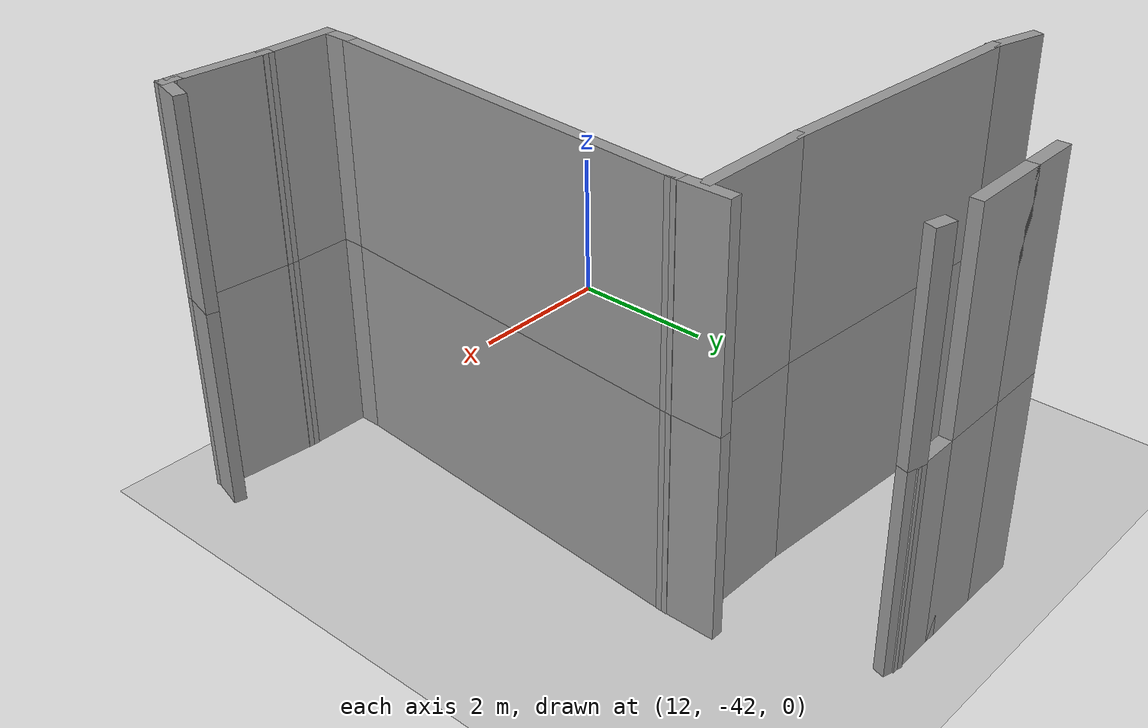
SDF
<sdf version="1.7">
 <world name="default">
  <model name="ground_plane">
   <static>1</static>
   <link name="link">
    <collision name="collision">
     <geometry><plane><normal>0 0 1</normal><size>100 100</size></plane></geometry>
     <surface>
      <contact><collide_bitmask>65535</collide_bitmask></contact>
      <friction><ode><mu>100</mu><mu2>50</mu2></ode></friction>
     </surface>
    </collision>
    <visual name="visual">
     <cast_shadows>0</cast_shadows>
     <geometry><plane><normal>0 0 1</normal><size>100 100</size></plane></geometry>
     <material>
      <script><uri>file://media/materials/scripts/gazebo.material</uri><name>Gazebo/Grey</name></script>
     </material>
    </visual>
   </link>
  </model>
  <model name="EnvDC01">
   <link name="Wall_199">
    <pose>7.47234 -28.3016 0 0 -0 0</pose>
    <visual name="Wall_199_Visual">
     <pose>0 0 1.25 0 -0 0</pose>
     <geometry><box><size>0.75 0.15 2.5</size></box></geometry>
     <material>
      <script><uri>file://media/materials/scripts/gazebo.material</uri><name>Gazebo/Grey</name></script>
      <ambient>1 1 1 1</ambient>
      <shader type="pixel"/>
     </material>
     <meta><layer>0</layer></meta>
    </visual>
    <collision name="Wall_199_Collision">
     <pose>0 0 1.25 0 -0 0</pose>
     <geometry><box><size>0.75 0.15 2.5</size></box></geometry>
     <surface>
      <friction>
       <ode><mu>1</mu><mu2>1</mu2><fdir1>0 0 0</fdir1><slip1>0</slip1><slip2>0</slip2></ode>
       <torsional>
        <coefficient>1</coefficient>
        <patch_radius>0</patch_radius>
        <surface_radius>0</surface_radius>
        <use_patch_radius>1</use_patch_radius>
        <ode><slip>0</slip></ode>
       </torsional>
      </friction>
      <bounce><restitution_coefficient>0</restitution_coefficient><threshold>1e+06</threshold></bounce>
      <contact>
       <collide_without_contact>0</collide_without_contact>
       <collide_without_contact_bitmask>1</collide_without_contact_bitmask>
       <collide_bitmask>1</collide_bitmask>
       <ode>
        <soft_cfm>0</soft_cfm>
        <soft_erp>0.2</soft_erp>
        <kp>1e+13</kp>
        <kd>1</kd>
        <max_vel>0.01</max_vel>
        <min_depth>0</min_depth>
       </ode>
       <bullet>
        <split_impulse>1</split_impulse>
        <split_impulse_penetration_threshold>-0.01</split_impulse_penetration_threshold>
        <soft_cfm>0</soft_cfm>
        <soft_erp>0.2</soft_erp>
        <kp>1e+13</kp>
        <kd>1</kd>
       </bullet>
      </contact>
     </surface>
    </collision>
   </link>
   <link name="Wall_200">
    <pose>8.19734 -28.3016 0 0 -0 0</pose>
    <visual name="Wall_200_Visual">
     <pose>0 0 1.25 0 -0 0</pose>
     <geometry><box><size>1 0.15 2.5</size></box></geometry>
     <material>
      <script><uri>file://media/materials/scripts/gazebo.material</uri><name>Gazebo/Grey</name></script>
      <ambient>1 1 1 1</ambient>
      <shader type="pixel"/>
     </material>
     <meta><layer>0</layer></meta>
    </visual>
    <collision name="Wall_200_Collision">
     <pose>0 0 1.25 0 -0 0</pose>
     <geometry><box><size>1 0.15 2.5</size></box></geometry>
     <surface>
      <friction>
       <ode><mu>1</mu><mu2>1</mu2><fdir1>0 0 0</fdir1><slip1>0</slip1><slip2>0</slip2></ode>
       <torsional>
        <coefficient>1</coefficient>
        <patch_radius>0</patch_radius>
        <surface_radius>0</surface_radius>
        <use_patch_radius>1</use_patch_radius>
        <ode><slip>0</slip></ode>
       </torsional>
      </friction>
      <bounce><restitution_coefficient>0</restitution_coefficient><threshold>1e+06</threshold></bounce>
      <contact>
       <collide_without_contact>0</collide_without_contact>
       <collide_without_contact_bitmask>1</collide_without_contact_bitmask>
       <collide_bitmask>1</collide_bitmask>
       <ode>
        <soft_cfm>0</soft_cfm>
        <soft_erp>0.2</soft_erp>
        <kp>1e+13</kp>
        <kd>1</kd>
        <max_vel>0.01</max_vel>
        <min_depth>0</min_depth>
       </ode>
       <bullet>
        <split_impulse>1</split_impulse>
        <split_impulse_penetration_threshold>-0.01</split_impulse_penetration_threshold>
        <soft_cfm>0</soft_cfm>
        <soft_erp>0.2</soft_erp>
        <kp>1e+13</kp>
        <kd>1</kd>
       </bullet>
      </contact>
     </surface>
    </collision>
   </link>
   <link name="Wall_201">
    <pose>8.92234 -28.3016 0 0 -0 0</pose>
    <visual name="Wall_201_Visual">
     <pose>0 0 1.25 0 -0 0</pose>
     <geometry><box><size>0.75 0.15 2.5</size></box></geometry>
     <material>
      <script><uri>file://media/materials/scripts/gazebo.material</uri><name>Gazebo/Grey</name></script>
      <ambient>1 1 1 1</ambient>
      <shader type="pixel"/>
     </material>
     <meta><layer>0</layer></meta>
    </visual>
    <collision name="Wall_201_Collision">
     <pose>0 0 1.25 0 -0 0</pose>
     <geometry><box><size>0.75 0.15 2.5</size></box></geometry>
     <surface>
      <friction>
       <ode><mu>1</mu><mu2>1</mu2><fdir1>0 0 0</fdir1><slip1>0</slip1><slip2>0</slip2></ode>
       <torsional>
        <coefficient>1</coefficient>
        <patch_radius>0</patch_radius>
        <surface_radius>0</surface_radius>
        <use_patch_radius>1</use_patch_radius>
        <ode><slip>0</slip></ode>
       </torsional>
      </friction>
      <bounce><restitution_coefficient>0</restitution_coefficient><threshold>1e+06</threshold></bounce>
      <contact>
       <collide_without_contact>0</collide_without_contact>
       <collide_without_contact_bitmask>1</collide_without_contact_bitmask>
       <collide_bitmask>1</collide_bitmask>
       <ode>
        <soft_cfm>0</soft_cfm>
        <soft_erp>0.2</soft_erp>
        <kp>1e+13</kp>
        <kd>1</kd>
        <max_vel>0.01</max_vel>
        <min_depth>0</min_depth>
       </ode>
       <bullet>
        <split_impulse>1</split_impulse>
        <split_impulse_penetration_threshold>-0.01</split_impulse_penetration_threshold>
        <soft_cfm>0</soft_cfm>
        <soft_erp>0.2</soft_erp>
        <kp>1e+13</kp>
        <kd>1</kd>
       </bullet>
      </contact>
     </surface>
    </collision>
   </link>
   <link name="Wall_202">
    <pose>9.27064 -28.3145 0 0 0 -0.261799</pose>
    <visual name="Wall_202_Visual">
     <pose>0 0 1.25 0 -0 0</pose>
     <geometry><box><size>0.25 0.15 2.5</size></box></geometry>
     <material>
      <script><uri>file://media/materials/scripts/gazebo.material</uri><name>Gazebo/Grey</name></script>
      <ambient>1 1 1 1</ambient>
      <shader type="pixel"/>
     </material>
     <meta><layer>0</layer></meta>
    </visual>
    <collision name="Wall_202_Collision">
     <pose>0 0 1.25 0 -0 0</pose>
     <geometry><box><size>0.25 0.15 2.5</size></box></geometry>
     <surface>
      <friction>
       <ode><mu>1</mu><mu2>1</mu2><fdir1>0 0 0</fdir1><slip1>0</slip1><slip2>0</slip2></ode>
       <torsional>
        <coefficient>1</coefficient>
        <patch_radius>0</patch_radius>
        <surface_radius>0</surface_radius>
        <use_patch_radius>1</use_patch_radius>
        <ode><slip>0</slip></ode>
       </torsional>
      </friction>
      <bounce><restitution_coefficient>0</restitution_coefficient><threshold>1e+06</threshold></bounce>
      <contact>
       <collide_without_contact>0</collide_without_contact>
       <collide_without_contact_bitmask>1</collide_without_contact_bitmask>
       <collide_bitmask>1</collide_bitmask>
       <ode>
        <soft_cfm>0</soft_cfm>
        <soft_erp>0.2</soft_erp>
        <kp>1e+13</kp>
        <kd>1</kd>
        <max_vel>0.01</max_vel>
        <min_depth>0</min_depth>
       </ode>
       <bullet>
        <split_impulse>1</split_impulse>
        <split_impulse_penetration_threshold>-0.01</split_impulse_penetration_threshold>
        <soft_cfm>0</soft_cfm>
        <soft_erp>0.2</soft_erp>
        <kp>1e+13</kp>
        <kd>1</kd>
       </bullet>
      </contact>
     </surface>
    </collision>
   </link>
   <link name="Wall_207">
    <pose>11.6412 -35.8531 0 0 -0 3.14159</pose>
    <visual name="Wall_207_Visual">
     <pose>0 0 1.25 0 -0 0</pose>
     <geometry><box><size>0.25 0.15 2.5</size></box></geometry>
     <material>
      <script><uri>file://media/materials/scripts/gazebo.material</uri><name>Gazebo/Grey</name></script>
      <ambient>1 1 1 1</ambient>
      <shader type="pixel"/>
     </material>
     <meta><layer>0</layer></meta>
    </visual>
    <collision name="Wall_207_Collision">
     <pose>0 0 1.25 0 -0 0</pose>
     <geometry><box><size>0.25 0.15 2.5</size></box></geometry>
     <surface>
      <friction>
       <ode><mu>1</mu><mu2>1</mu2><fdir1>0 0 0</fdir1><slip1>0</slip1><slip2>0</slip2></ode>
       <torsional>
        <coefficient>1</coefficient>
        <patch_radius>0</patch_radius>
        <surface_radius>0</surface_radius>
        <use_patch_radius>1</use_patch_radius>
        <ode><slip>0</slip></ode>
       </torsional>
      </friction>
      <bounce><restitution_coefficient>0</restitution_coefficient><threshold>1e+06</threshold></bounce>
      <contact>
       <collide_without_contact>0</collide_without_contact>
       <collide_without_contact_bitmask>1</collide_without_contact_bitmask>
       <collide_bitmask>1</collide_bitmask>
       <ode>
        <soft_cfm>0</soft_cfm>
        <soft_erp>0.2</soft_erp>
        <kp>1e+13</kp>
        <kd>1</kd>
        <max_vel>0.01</max_vel>
        <min_depth>0</min_depth>
       </ode>
       <bullet>
        <split_impulse>1</split_impulse>
        <split_impulse_penetration_threshold>-0.01</split_impulse_penetration_threshold>
        <soft_cfm>0</soft_cfm>
        <soft_erp>0.2</soft_erp>
        <kp>1e+13</kp>
        <kd>1</kd>
       </bullet>
      </contact>
     </surface>
    </collision>
   </link>
   <link name="Wall_208">
    <pose>11.0472 -35.8078 0 0 -0 3.05853</pose>
    <visual name="Wall_208_Visual">
     <pose>0 0 1.25 0 -0 0</pose>
     <geometry><box><size>1.24184 0.15 2.5</size></box></geometry>
     <material>
      <script><uri>file://media/materials/scripts/gazebo.material</uri><name>Gazebo/Grey</name></script>
      <ambient>1 1 1 1</ambient>
      <shader type="pixel"/>
     </material>
     <meta><layer>0</layer></meta>
    </visual>
    <collision name="Wall_208_Collision">
     <pose>0 0 1.25 0 -0 0</pose>
     <geometry><box><size>1.24184 0.15 2.5</size></box></geometry>
     <surface>
      <friction>
       <ode><mu>1</mu><mu2>1</mu2><fdir1>0 0 0</fdir1><slip1>0</slip1><slip2>0</slip2></ode>
       <torsional>
        <coefficient>1</coefficient>
        <patch_radius>0</patch_radius>
        <surface_radius>0</surface_radius>
        <use_patch_radius>1</use_patch_radius>
        <ode><slip>0</slip></ode>
       </torsional>
      </friction>
      <bounce><restitution_coefficient>0</restitution_coefficient><threshold>1e+06</threshold></bounce>
      <contact>
       <collide_without_contact>0</collide_without_contact>
       <collide_without_contact_bitmask>1</collide_without_contact_bitmask>
       <collide_bitmask>1</collide_bitmask>
       <ode>
        <soft_cfm>0</soft_cfm>
        <soft_erp>0.2</soft_erp>
        <kp>1e+13</kp>
        <kd>1</kd>
        <max_vel>0.01</max_vel>
        <min_depth>0</min_depth>
       </ode>
       <bullet>
        <split_impulse>1</split_impulse>
        <split_impulse_penetration_threshold>-0.01</split_impulse_penetration_threshold>
        <soft_cfm>0</soft_cfm>
        <soft_erp>0.2</soft_erp>
        <kp>1e+13</kp>
        <kd>1</kd>
       </bullet>
      </contact>
     </surface>
    </collision>
   </link>
   <link name="Wall_209">
    <pose>10.0781 -35.7625 0 0 -0 3.14159</pose>
    <visual name="Wall_209_Visual">
     <pose>0 0 1.25 0 -0 0</pose>
     <geometry><box><size>1 0.15 2.5</size></box></geometry>
     <material>
      <script><uri>file://media/materials/scripts/gazebo.material</uri><name>Gazebo/Grey</name></script>
      <ambient>1 1 1 1</ambient>
      <shader type="pixel"/>
     </material>
     <meta><layer>0</layer></meta>
    </visual>
    <collision name="Wall_209_Collision">
     <pose>0 0 1.25 0 -0 0</pose>
     <geometry><box><size>1 0.15 2.5</size></box></geometry>
     <surface>
      <friction>
       <ode><mu>1</mu><mu2>1</mu2><fdir1>0 0 0</fdir1><slip1>0</slip1><slip2>0</slip2></ode>
       <torsional>
        <coefficient>1</coefficient>
        <patch_radius>0</patch_radius>
        <surface_radius>0</surface_radius>
        <use_patch_radius>1</use_patch_radius>
        <ode><slip>0</slip></ode>
       </torsional>
      </friction>
      <bounce><restitution_coefficient>0</restitution_coefficient><threshold>1e+06</threshold></bounce>
      <contact>
       <collide_without_contact>0</collide_without_contact>
       <collide_without_contact_bitmask>1</collide_without_contact_bitmask>
       <collide_bitmask>1</collide_bitmask>
       <ode>
        <soft_cfm>0</soft_cfm>
        <soft_erp>0.2</soft_erp>
        <kp>1e+13</kp>
        <kd>1</kd>
        <max_vel>0.01</max_vel>
        <min_depth>0</min_depth>
       </ode>
       <bullet>
        <split_impulse>1</split_impulse>
        <split_impulse_penetration_threshold>-0.01</split_impulse_penetration_threshold>
        <soft_cfm>0</soft_cfm>
        <soft_erp>0.2</soft_erp>
        <kp>1e+13</kp>
        <kd>1</kd>
       </bullet>
      </contact>
     </surface>
    </collision>
   </link>
   <link name="Wall_211">
    <pose>9.65311 -35.5875 0 0 -0 1.5708</pose>
    <visual name="Wall_211_Visual">
     <pose>0 0 1.25 0 -0 0</pose>
     <geometry><box><size>0.5 0.15 2.5</size></box></geometry>
     <material>
      <script><uri>file://media/materials/scripts/gazebo.material</uri><name>Gazebo/Grey</name></script>
      <ambient>1 1 1 1</ambient>
      <shader type="pixel"/>
     </material>
     <meta><layer>0</layer></meta>
    </visual>
    <collision name="Wall_211_Collision">
     <pose>0 0 1.25 0 -0 0</pose>
     <geometry><box><size>0.5 0.15 2.5</size></box></geometry>
     <surface>
      <friction>
       <ode><mu>1</mu><mu2>1</mu2><fdir1>0 0 0</fdir1><slip1>0</slip1><slip2>0</slip2></ode>
       <torsional>
        <coefficient>1</coefficient>
        <patch_radius>0</patch_radius>
        <surface_radius>0</surface_radius>
        <use_patch_radius>1</use_patch_radius>
        <ode><slip>0</slip></ode>
       </torsional>
      </friction>
      <bounce><restitution_coefficient>0</restitution_coefficient><threshold>1e+06</threshold></bounce>
      <contact>
       <collide_without_contact>0</collide_without_contact>
       <collide_without_contact_bitmask>1</collide_without_contact_bitmask>
       <collide_bitmask>1</collide_bitmask>
       <ode>
        <soft_cfm>0</soft_cfm>
        <soft_erp>0.2</soft_erp>
        <kp>1e+13</kp>
        <kd>1</kd>
        <max_vel>0.01</max_vel>
        <min_depth>0</min_depth>
       </ode>
       <bullet>
        <split_impulse>1</split_impulse>
        <split_impulse_penetration_threshold>-0.01</split_impulse_penetration_threshold>
        <soft_cfm>0</soft_cfm>
        <soft_erp>0.2</soft_erp>
        <kp>1e+13</kp>
        <kd>1</kd>
       </bullet>
      </contact>
     </surface>
    </collision>
   </link>
   <link name="Wall_212">
    <pose>9.836 -32.9912 0 0 -0 1.49541</pose>
    <visual name="Wall_212_Visual">
     <pose>0 0 1.25 0 -0 0</pose>
     <geometry><box><size>5.0065 0.15 2.5</size></box></geometry>
     <material>
      <script><uri>file://media/materials/scripts/gazebo.material</uri><name>Gazebo/Grey</name></script>
      <ambient>1 1 1 1</ambient>
      <shader type="pixel"/>
     </material>
     <meta><layer>0</layer></meta>
    </visual>
    <collision name="Wall_212_Collision">
     <pose>0 0 1.25 0 -0 0</pose>
     <geometry><box><size>5.0065 0.15 2.5</size></box></geometry>
     <surface>
      <friction>
       <ode><mu>1</mu><mu2>1</mu2><fdir1>0 0 0</fdir1><slip1>0</slip1><slip2>0</slip2></ode>
       <torsional>
        <coefficient>1</coefficient>
        <patch_radius>0</patch_radius>
        <surface_radius>0</surface_radius>
        <use_patch_radius>1</use_patch_radius>
        <ode><slip>0</slip></ode>
       </torsional>
      </friction>
      <bounce><restitution_coefficient>0</restitution_coefficient><threshold>1e+06</threshold></bounce>
      <contact>
       <collide_without_contact>0</collide_without_contact>
       <collide_without_contact_bitmask>1</collide_without_contact_bitmask>
       <collide_bitmask>1</collide_bitmask>
       <ode>
        <soft_cfm>0</soft_cfm>
        <soft_erp>0.2</soft_erp>
        <kp>1e+13</kp>
        <kd>1</kd>
        <max_vel>0.01</max_vel>
        <min_depth>0</min_depth>
       </ode>
       <bullet>
        <split_impulse>1</split_impulse>
        <split_impulse_penetration_threshold>-0.01</split_impulse_penetration_threshold>
        <soft_cfm>0</soft_cfm>
        <soft_erp>0.2</soft_erp>
        <kp>1e+13</kp>
        <kd>1</kd>
       </bullet>
      </contact>
     </surface>
    </collision>
   </link>
   <link name="Wall_213">
    <pose>10.0189 -30.2698 0 0 -0 1.5708</pose>
    <visual name="Wall_213_Visual">
     <pose>0 0 1.25 0 -0 0</pose>
     <geometry><box><size>0.75 0.15 2.5</size></box></geometry>
     <material>
      <script><uri>file://media/materials/scripts/gazebo.material</uri><name>Gazebo/Grey</name></script>
      <ambient>1 1 1 1</ambient>
      <shader type="pixel"/>
     </material>
     <meta><layer>0</layer></meta>
    </visual>
    <collision name="Wall_213_Collision">
     <pose>0 0 1.25 0 -0 0</pose>
     <geometry><box><size>0.75 0.15 2.5</size></box></geometry>
     <surface>
      <friction>
       <ode><mu>1</mu><mu2>1</mu2><fdir1>0 0 0</fdir1><slip1>0</slip1><slip2>0</slip2></ode>
       <torsional>
        <coefficient>1</coefficient>
        <patch_radius>0</patch_radius>
        <surface_radius>0</surface_radius>
        <use_patch_radius>1</use_patch_radius>
        <ode><slip>0</slip></ode>
       </torsional>
      </friction>
      <bounce><restitution_coefficient>0</restitution_coefficient><threshold>1e+06</threshold></bounce>
      <contact>
       <collide_without_contact>0</collide_without_contact>
       <collide_without_contact_bitmask>1</collide_without_contact_bitmask>
       <collide_bitmask>1</collide_bitmask>
       <ode>
        <soft_cfm>0</soft_cfm>
        <soft_erp>0.2</soft_erp>
        <kp>1e+13</kp>
        <kd>1</kd>
        <max_vel>0.01</max_vel>
        <min_depth>0</min_depth>
       </ode>
       <bullet>
        <split_impulse>1</split_impulse>
        <split_impulse_penetration_threshold>-0.01</split_impulse_penetration_threshold>
        <soft_cfm>0</soft_cfm>
        <soft_erp>0.2</soft_erp>
        <kp>1e+13</kp>
        <kd>1</kd>
       </bullet>
      </contact>
     </surface>
    </collision>
   </link>
   <link name="Wall_215">
    <pose>9.25228 -30.2692 0 0 -0 3.14159</pose>
    <visual name="Wall_215_Visual">
     <pose>0 0 1.25 0 -0 0</pose>
     <geometry><box><size>1.5 0.15 2.5</size></box></geometry>
     <material>
      <script><uri>file://media/materials/scripts/gazebo.material</uri><name>Gazebo/Grey</name></script>
      <ambient>1 1 1 1</ambient>
      <shader type="pixel"/>
     </material>
     <meta><layer>0</layer></meta>
    </visual>
    <collision name="Wall_215_Collision">
     <pose>0 0 1.25 0 -0 0</pose>
     <geometry><box><size>1.5 0.15 2.5</size></box></geometry>
     <surface>
      <friction>
       <ode><mu>1</mu><mu2>1</mu2><fdir1>0 0 0</fdir1><slip1>0</slip1><slip2>0</slip2></ode>
       <torsional>
        <coefficient>1</coefficient>
        <patch_radius>0</patch_radius>
        <surface_radius>0</surface_radius>
        <use_patch_radius>1</use_patch_radius>
        <ode><slip>0</slip></ode>
       </torsional>
      </friction>
      <bounce><restitution_coefficient>0</restitution_coefficient><threshold>1e+06</threshold></bounce>
      <contact>
       <collide_without_contact>0</collide_without_contact>
       <collide_without_contact_bitmask>1</collide_without_contact_bitmask>
       <collide_bitmask>1</collide_bitmask>
       <ode>
        <soft_cfm>0</soft_cfm>
        <soft_erp>0.2</soft_erp>
        <kp>1e+13</kp>
        <kd>1</kd>
        <max_vel>0.01</max_vel>
        <min_depth>0</min_depth>
       </ode>
       <bullet>
        <split_impulse>1</split_impulse>
        <split_impulse_penetration_threshold>-0.01</split_impulse_penetration_threshold>
        <soft_cfm>0</soft_cfm>
        <soft_erp>0.2</soft_erp>
        <kp>1e+13</kp>
        <kd>1</kd>
       </bullet>
      </contact>
     </surface>
    </collision>
   </link>
   <link name="Wall_216">
    <pose>6.91506 -30.1665 0 0 -0 3.07989</pose>
    <visual name="Wall_216_Visual">
     <pose>0 0 1.25 0 -0 0</pose>
     <geometry><box><size>3.48078 0.15 2.5</size></box></geometry>
     <material>
      <script><uri>file://media/materials/scripts/gazebo.material</uri><name>Gazebo/Grey</name></script>
      <ambient>1 1 1 1</ambient>
      <shader type="pixel"/>
     </material>
     <meta><layer>0</layer></meta>
    </visual>
    <collision name="Wall_216_Collision">
     <pose>0 0 1.25 0 -0 0</pose>
     <geometry><box><size>3.48078 0.15 2.5</size></box></geometry>
     <surface>
      <friction>
       <ode><mu>1</mu><mu2>1</mu2><fdir1>0 0 0</fdir1><slip1>0</slip1><slip2>0</slip2></ode>
       <torsional>
        <coefficient>1</coefficient>
        <patch_radius>0</patch_radius>
        <surface_radius>0</surface_radius>
        <use_patch_radius>1</use_patch_radius>
        <ode><slip>0</slip></ode>
       </torsional>
      </friction>
      <bounce><restitution_coefficient>0</restitution_coefficient><threshold>1e+06</threshold></bounce>
      <contact>
       <collide_without_contact>0</collide_without_contact>
       <collide_without_contact_bitmask>1</collide_without_contact_bitmask>
       <collide_bitmask>1</collide_bitmask>
       <ode>
        <soft_cfm>0</soft_cfm>
        <soft_erp>0.2</soft_erp>
        <kp>1e+13</kp>
        <kd>1</kd>
        <max_vel>0.01</max_vel>
        <min_depth>0</min_depth>
       </ode>
       <bullet>
        <split_impulse>1</split_impulse>
        <split_impulse_penetration_threshold>-0.01</split_impulse_penetration_threshold>
        <soft_cfm>0</soft_cfm>
        <soft_erp>0.2</soft_erp>
        <kp>1e+13</kp>
        <kd>1</kd>
       </bullet>
      </contact>
     </surface>
    </collision>
   </link>
   <link name="Wall_217">
    <pose>4.96306 -29.9862 0 0 -0 2.87979</pose>
    <visual name="Wall_217_Visual">
     <pose>0 0 1.25 0 -0 0</pose>
     <geometry><box><size>0.75 0.15 2.5</size></box></geometry>
     <material>
      <script><uri>file://media/materials/scripts/gazebo.material</uri><name>Gazebo/Grey</name></script>
      <ambient>1 1 1 1</ambient>
      <shader type="pixel"/>
     </material>
     <meta><layer>0</layer></meta>
    </visual>
    <collision name="Wall_217_Collision">
     <pose>0 0 1.25 0 -0 0</pose>
     <geometry><box><size>0.75 0.15 2.5</size></box></geometry>
     <surface>
      <friction>
       <ode><mu>1</mu><mu2>1</mu2><fdir1>0 0 0</fdir1><slip1>0</slip1><slip2>0</slip2></ode>
       <torsional>
        <coefficient>1</coefficient>
        <patch_radius>0</patch_radius>
        <surface_radius>0</surface_radius>
        <use_patch_radius>1</use_patch_radius>
        <ode><slip>0</slip></ode>
       </torsional>
      </friction>
      <bounce><restitution_coefficient>0</restitution_coefficient><threshold>1e+06</threshold></bounce>
      <contact>
       <collide_without_contact>0</collide_without_contact>
       <collide_without_contact_bitmask>1</collide_without_contact_bitmask>
       <collide_bitmask>1</collide_bitmask>
       <ode>
        <soft_cfm>0</soft_cfm>
        <soft_erp>0.2</soft_erp>
        <kp>1e+13</kp>
        <kd>1</kd>
        <max_vel>0.01</max_vel>
        <min_depth>0</min_depth>
       </ode>
       <bullet>
        <split_impulse>1</split_impulse>
        <split_impulse_penetration_threshold>-0.01</split_impulse_penetration_threshold>
        <soft_cfm>0</soft_cfm>
        <soft_erp>0.2</soft_erp>
        <kp>1e+13</kp>
        <kd>1</kd>
       </bullet>
      </contact>
     </surface>
    </collision>
   </link>
   <link name="Wall_267">
    <pose>11.7365 -35.6841 2.5 0 -0 1.309</pose>
    <visual name="Wall_267_Visual">
     <pose>0 0 1.25 0 -0 0</pose>
     <geometry><box><size>0.5 0.15 2.5</size></box></geometry>
     <material>
      <script><uri>file://media/materials/scripts/gazebo.material</uri><name>Gazebo/Grey</name></script>
      <ambient>1 1 1 1</ambient>
      <shader type="pixel"/>
     </material>
     <meta><layer>1</layer></meta>
    </visual>
    <collision name="Wall_267_Collision">
     <pose>0 0 1.25 0 -0 0</pose>
     <geometry><box><size>0.5 0.15 2.5</size></box></geometry>
     <surface>
      <friction>
       <ode><mu>1</mu><mu2>1</mu2><fdir1>0 0 0</fdir1><slip1>0</slip1><slip2>0</slip2></ode>
       <torsional>
        <coefficient>1</coefficient>
        <patch_radius>0</patch_radius>
        <surface_radius>0</surface_radius>
        <use_patch_radius>1</use_patch_radius>
        <ode><slip>0</slip></ode>
       </torsional>
      </friction>
      <bounce><restitution_coefficient>0</restitution_coefficient><threshold>1e+06</threshold></bounce>
      <contact>
       <collide_without_contact>0</collide_without_contact>
       <collide_without_contact_bitmask>1</collide_without_contact_bitmask>
       <collide_bitmask>1</collide_bitmask>
       <ode>
        <soft_cfm>0</soft_cfm>
        <soft_erp>0.2</soft_erp>
        <kp>1e+13</kp>
        <kd>1</kd>
        <max_vel>0.01</max_vel>
        <min_depth>0</min_depth>
       </ode>
       <bullet>
        <split_impulse>1</split_impulse>
        <split_impulse_penetration_threshold>-0.01</split_impulse_penetration_threshold>
        <soft_cfm>0</soft_cfm>
        <soft_erp>0.2</soft_erp>
        <kp>1e+13</kp>
        <kd>1</kd>
       </bullet>
      </contact>
     </surface>
    </collision>
   </link>
   <link name="Wall_373">
    <pose>7.47234 -28.3016 2.5 0 -0 0</pose>
    <visual name="Wall_373_Visual">
     <pose>0 0 1.25 0 -0 0</pose>
     <geometry><box><size>0.75 0.15 2.5</size></box></geometry>
     <material>
      <script><uri>file://media/materials/scripts/gazebo.material</uri><name>Gazebo/Grey</name></script>
      <ambient>1 1 1 1</ambient>
      <shader type="pixel"/>
     </material>
     <meta><layer>1</layer></meta>
    </visual>
    <collision name="Wall_373_Collision">
     <pose>0 0 1.25 0 -0 0</pose>
     <geometry><box><size>0.75 0.15 2.5</size></box></geometry>
     <surface>
      <friction>
       <ode><mu>1</mu><mu2>1</mu2><fdir1>0 0 0</fdir1><slip1>0</slip1><slip2>0</slip2></ode>
       <torsional>
        <coefficient>1</coefficient>
        <patch_radius>0</patch_radius>
        <surface_radius>0</surface_radius>
        <use_patch_radius>1</use_patch_radius>
        <ode><slip>0</slip></ode>
       </torsional>
      </friction>
      <bounce><restitution_coefficient>0</restitution_coefficient><threshold>1e+06</threshold></bounce>
      <contact>
       <collide_without_contact>0</collide_without_contact>
       <collide_without_contact_bitmask>1</collide_without_contact_bitmask>
       <collide_bitmask>1</collide_bitmask>
       <ode>
        <soft_cfm>0</soft_cfm>
        <soft_erp>0.2</soft_erp>
        <kp>1e+13</kp>
        <kd>1</kd>
        <max_vel>0.01</max_vel>
        <min_depth>0</min_depth>
       </ode>
       <bullet>
        <split_impulse>1</split_impulse>
        <split_impulse_penetration_threshold>-0.01</split_impulse_penetration_threshold>
        <soft_cfm>0</soft_cfm>
        <soft_erp>0.2</soft_erp>
        <kp>1e+13</kp>
        <kd>1</kd>
       </bullet>
      </contact>
     </surface>
    </collision>
   </link>
   <link name="Wall_374">
    <pose>8.19734 -28.3016 2.5 0 -0 0</pose>
    <visual name="Wall_374_Visual">
     <pose>0 0 1.25 0 -0 0</pose>
     <geometry><box><size>1 0.15 2.5</size></box></geometry>
     <material>
      <script><uri>file://media/materials/scripts/gazebo.material</uri><name>Gazebo/Grey</name></script>
      <ambient>1 1 1 1</ambient>
      <shader type="pixel"/>
     </material>
     <meta><layer>1</layer></meta>
    </visual>
    <collision name="Wall_374_Collision">
     <pose>0 0 1.25 0 -0 0</pose>
     <geometry><box><size>1 0.15 2.5</size></box></geometry>
     <surface>
      <friction>
       <ode><mu>1</mu><mu2>1</mu2><fdir1>0 0 0</fdir1><slip1>0</slip1><slip2>0</slip2></ode>
       <torsional>
        <coefficient>1</coefficient>
        <patch_radius>0</patch_radius>
        <surface_radius>0</surface_radius>
        <use_patch_radius>1</use_patch_radius>
        <ode><slip>0</slip></ode>
       </torsional>
      </friction>
      <bounce><restitution_coefficient>0</restitution_coefficient><threshold>1e+06</threshold></bounce>
      <contact>
       <collide_without_contact>0</collide_without_contact>
       <collide_without_contact_bitmask>1</collide_without_contact_bitmask>
       <collide_bitmask>1</collide_bitmask>
       <ode>
        <soft_cfm>0</soft_cfm>
        <soft_erp>0.2</soft_erp>
        <kp>1e+13</kp>
        <kd>1</kd>
        <max_vel>0.01</max_vel>
        <min_depth>0</min_depth>
       </ode>
       <bullet>
        <split_impulse>1</split_impulse>
        <split_impulse_penetration_threshold>-0.01</split_impulse_penetration_threshold>
        <soft_cfm>0</soft_cfm>
        <soft_erp>0.2</soft_erp>
        <kp>1e+13</kp>
        <kd>1</kd>
       </bullet>
      </contact>
     </surface>
    </collision>
   </link>
   <link name="Wall_376">
    <pose>9.27064 -28.3145 2.5 0 0 -0.261799</pose>
    <visual name="Wall_376_Visual">
     <pose>0 0 1.25 0 -0 0</pose>
     <geometry><box><size>0.25 0.15 2.5</size></box></geometry>
     <material>
      <script><uri>file://media/materials/scripts/gazebo.material</uri><name>Gazebo/Grey</name></script>
      <ambient>1 1 1 1</ambient>
      <shader type="pixel"/>
     </material>
     <meta><layer>1</layer></meta>
    </visual>
    <collision name="Wall_376_Collision">
     <pose>0 0 1.25 0 -0 0</pose>
     <geometry><box><size>0.25 0.15 2.5</size></box></geometry>
     <surface>
      <friction>
       <ode><mu>1</mu><mu2>1</mu2><fdir1>0 0 0</fdir1><slip1>0</slip1><slip2>0</slip2></ode>
       <torsional>
        <coefficient>1</coefficient>
        <patch_radius>0</patch_radius>
        <surface_radius>0</surface_radius>
        <use_patch_radius>1</use_patch_radius>
        <ode><slip>0</slip></ode>
       </torsional>
      </friction>
      <bounce><restitution_coefficient>0</restitution_coefficient><threshold>1e+06</threshold></bounce>
      <contact>
       <collide_without_contact>0</collide_without_contact>
       <collide_without_contact_bitmask>1</collide_without_contact_bitmask>
       <collide_bitmask>1</collide_bitmask>
       <ode>
        <soft_cfm>0</soft_cfm>
        <soft_erp>0.2</soft_erp>
        <kp>1e+13</kp>
        <kd>1</kd>
        <max_vel>0.01</max_vel>
        <min_depth>0</min_depth>
       </ode>
       <bullet>
        <split_impulse>1</split_impulse>
        <split_impulse_penetration_threshold>-0.01</split_impulse_penetration_threshold>
        <soft_cfm>0</soft_cfm>
        <soft_erp>0.2</soft_erp>
        <kp>1e+13</kp>
        <kd>1</kd>
       </bullet>
      </contact>
     </surface>
    </collision>
   </link>
   <link name="Wall_380">
    <pose>11.6412 -35.8531 2.5 0 -0 3.14159</pose>
    <visual name="Wall_380_Visual">
     <pose>0 0 1.25 0 -0 0</pose>
     <geometry><box><size>0.25 0.15 2.5</size></box></geometry>
     <material>
      <script><uri>file://media/materials/scripts/gazebo.material</uri><name>Gazebo/Grey</name></script>
      <ambient>1 1 1 1</ambient>
      <shader type="pixel"/>
     </material>
     <meta><layer>1</layer></meta>
    </visual>
    <collision name="Wall_380_Collision">
     <pose>0 0 1.25 0 -0 0</pose>
     <geometry><box><size>0.25 0.15 2.5</size></box></geometry>
     <surface>
      <friction>
       <ode><mu>1</mu><mu2>1</mu2><fdir1>0 0 0</fdir1><slip1>0</slip1><slip2>0</slip2></ode>
       <torsional>
        <coefficient>1</coefficient>
        <patch_radius>0</patch_radius>
        <surface_radius>0</surface_radius>
        <use_patch_radius>1</use_patch_radius>
        <ode><slip>0</slip></ode>
       </torsional>
      </friction>
      <bounce><restitution_coefficient>0</restitution_coefficient><threshold>1e+06</threshold></bounce>
      <contact>
       <collide_without_contact>0</collide_without_contact>
       <collide_without_contact_bitmask>1</collide_without_contact_bitmask>
       <collide_bitmask>1</collide_bitmask>
       <ode>
        <soft_cfm>0</soft_cfm>
        <soft_erp>0.2</soft_erp>
        <kp>1e+13</kp>
        <kd>1</kd>
        <max_vel>0.01</max_vel>
        <min_depth>0</min_depth>
       </ode>
       <bullet>
        <split_impulse>1</split_impulse>
        <split_impulse_penetration_threshold>-0.01</split_impulse_penetration_threshold>
        <soft_cfm>0</soft_cfm>
        <soft_erp>0.2</soft_erp>
        <kp>1e+13</kp>
        <kd>1</kd>
       </bullet>
      </contact>
     </surface>
    </collision>
   </link>
   <link name="Wall_381">
    <pose>11.0472 -35.8078 2.5 0 -0 3.05853</pose>
    <visual name="Wall_381_Visual">
     <pose>0 0 1.25 0 -0 0</pose>
     <geometry><box><size>1.24184 0.15 2.5</size></box></geometry>
     <material>
      <script><uri>file://media/materials/scripts/gazebo.material</uri><name>Gazebo/Grey</name></script>
      <ambient>1 1 1 1</ambient>
      <shader type="pixel"/>
     </material>
     <meta><layer>1</layer></meta>
    </visual>
    <collision name="Wall_381_Collision">
     <pose>0 0 1.25 0 -0 0</pose>
     <geometry><box><size>1.24184 0.15 2.5</size></box></geometry>
     <surface>
      <friction>
       <ode><mu>1</mu><mu2>1</mu2><fdir1>0 0 0</fdir1><slip1>0</slip1><slip2>0</slip2></ode>
       <torsional>
        <coefficient>1</coefficient>
        <patch_radius>0</patch_radius>
        <surface_radius>0</surface_radius>
        <use_patch_radius>1</use_patch_radius>
        <ode><slip>0</slip></ode>
       </torsional>
      </friction>
      <bounce><restitution_coefficient>0</restitution_coefficient><threshold>1e+06</threshold></bounce>
      <contact>
       <collide_without_contact>0</collide_without_contact>
       <collide_without_contact_bitmask>1</collide_without_contact_bitmask>
       <collide_bitmask>1</collide_bitmask>
       <ode>
        <soft_cfm>0</soft_cfm>
        <soft_erp>0.2</soft_erp>
        <kp>1e+13</kp>
        <kd>1</kd>
        <max_vel>0.01</max_vel>
        <min_depth>0</min_depth>
       </ode>
       <bullet>
        <split_impulse>1</split_impulse>
        <split_impulse_penetration_threshold>-0.01</split_impulse_penetration_threshold>
        <soft_cfm>0</soft_cfm>
        <soft_erp>0.2</soft_erp>
        <kp>1e+13</kp>
        <kd>1</kd>
       </bullet>
      </contact>
     </surface>
    </collision>
   </link>
   <link name="Wall_382">
    <pose>10.0781 -35.7625 2.5 0 -0 3.14159</pose>
    <visual name="Wall_382_Visual">
     <pose>0 0 1.25 0 -0 0</pose>
     <geometry><box><size>1 0.15 2.5</size></box></geometry>
     <material>
      <script><uri>file://media/materials/scripts/gazebo.material</uri><name>Gazebo/Grey</name></script>
      <ambient>1 1 1 1</ambient>
      <shader type="pixel"/>
     </material>
     <meta><layer>1</layer></meta>
    </visual>
    <collision name="Wall_382_Collision">
     <pose>0 0 1.25 0 -0 0</pose>
     <geometry><box><size>1 0.15 2.5</size></box></geometry>
     <surface>
      <friction>
       <ode><mu>1</mu><mu2>1</mu2><fdir1>0 0 0</fdir1><slip1>0</slip1><slip2>0</slip2></ode>
       <torsional>
        <coefficient>1</coefficient>
        <patch_radius>0</patch_radius>
        <surface_radius>0</surface_radius>
        <use_patch_radius>1</use_patch_radius>
        <ode><slip>0</slip></ode>
       </torsional>
      </friction>
      <bounce><restitution_coefficient>0</restitution_coefficient><threshold>1e+06</threshold></bounce>
      <contact>
       <collide_without_contact>0</collide_without_contact>
       <collide_without_contact_bitmask>1</collide_without_contact_bitmask>
       <collide_bitmask>1</collide_bitmask>
       <ode>
        <soft_cfm>0</soft_cfm>
        <soft_erp>0.2</soft_erp>
        <kp>1e+13</kp>
        <kd>1</kd>
        <max_vel>0.01</max_vel>
        <min_depth>0</min_depth>
       </ode>
       <bullet>
        <split_impulse>1</split_impulse>
        <split_impulse_penetration_threshold>-0.01</split_impulse_penetration_threshold>
        <soft_cfm>0</soft_cfm>
        <soft_erp>0.2</soft_erp>
        <kp>1e+13</kp>
        <kd>1</kd>
       </bullet>
      </contact>
     </surface>
    </collision>
   </link>
   <link name="Wall_383">
    <pose>9.65311 -35.5875 2.5 0 -0 1.5708</pose>
    <visual name="Wall_383_Visual">
     <pose>0 0 1.25 0 -0 0</pose>
     <geometry><box><size>0.5 0.15 2.5</size></box></geometry>
     <material>
      <script><uri>file://media/materials/scripts/gazebo.material</uri><name>Gazebo/Grey</name></script>
      <ambient>1 1 1 1</ambient>
      <shader type="pixel"/>
     </material>
     <meta><layer>1</layer></meta>
    </visual>
    <collision name="Wall_383_Collision">
     <pose>0 0 1.25 0 -0 0</pose>
     <geometry><box><size>0.5 0.15 2.5</size></box></geometry>
     <surface>
      <friction>
       <ode><mu>1</mu><mu2>1</mu2><fdir1>0 0 0</fdir1><slip1>0</slip1><slip2>0</slip2></ode>
       <torsional>
        <coefficient>1</coefficient>
        <patch_radius>0</patch_radius>
        <surface_radius>0</surface_radius>
        <use_patch_radius>1</use_patch_radius>
        <ode><slip>0</slip></ode>
       </torsional>
      </friction>
      <bounce><restitution_coefficient>0</restitution_coefficient><threshold>1e+06</threshold></bounce>
      <contact>
       <collide_without_contact>0</collide_without_contact>
       <collide_without_contact_bitmask>1</collide_without_contact_bitmask>
       <collide_bitmask>1</collide_bitmask>
       <ode>
        <soft_cfm>0</soft_cfm>
        <soft_erp>0.2</soft_erp>
        <kp>1e+13</kp>
        <kd>1</kd>
        <max_vel>0.01</max_vel>
        <min_depth>0</min_depth>
       </ode>
       <bullet>
        <split_impulse>1</split_impulse>
        <split_impulse_penetration_threshold>-0.01</split_impulse_penetration_threshold>
        <soft_cfm>0</soft_cfm>
        <soft_erp>0.2</soft_erp>
        <kp>1e+13</kp>
        <kd>1</kd>
       </bullet>
      </contact>
     </surface>
    </collision>
   </link>
   <link name="Wall_384">
    <pose>9.836 -32.9912 2.5 0 -0 1.49541</pose>
    <visual name="Wall_384_Visual">
     <pose>0 0 1.25 0 -0 0</pose>
     <geometry><box><size>5.0065 0.15 2.5</size></box></geometry>
     <material>
      <script><uri>file://media/materials/scripts/gazebo.material</uri><name>Gazebo/Grey</name></script>
      <ambient>1 1 1 1</ambient>
      <shader type="pixel"/>
     </material>
     <meta><layer>1</layer></meta>
    </visual>
    <collision name="Wall_384_Collision">
     <pose>0 0 1.25 0 -0 0</pose>
     <geometry><box><size>5.0065 0.15 2.5</size></box></geometry>
     <surface>
      <friction>
       <ode><mu>1</mu><mu2>1</mu2><fdir1>0 0 0</fdir1><slip1>0</slip1><slip2>0</slip2></ode>
       <torsional>
        <coefficient>1</coefficient>
        <patch_radius>0</patch_radius>
        <surface_radius>0</surface_radius>
        <use_patch_radius>1</use_patch_radius>
        <ode><slip>0</slip></ode>
       </torsional>
      </friction>
      <bounce><restitution_coefficient>0</restitution_coefficient><threshold>1e+06</threshold></bounce>
      <contact>
       <collide_without_contact>0</collide_without_contact>
       <collide_without_contact_bitmask>1</collide_without_contact_bitmask>
       <collide_bitmask>1</collide_bitmask>
       <ode>
        <soft_cfm>0</soft_cfm>
        <soft_erp>0.2</soft_erp>
        <kp>1e+13</kp>
        <kd>1</kd>
        <max_vel>0.01</max_vel>
        <min_depth>0</min_depth>
       </ode>
       <bullet>
        <split_impulse>1</split_impulse>
        <split_impulse_penetration_threshold>-0.01</split_impulse_penetration_threshold>
        <soft_cfm>0</soft_cfm>
        <soft_erp>0.2</soft_erp>
        <kp>1e+13</kp>
        <kd>1</kd>
       </bullet>
      </contact>
     </surface>
    </collision>
   </link>
   <link name="Wall_385">
    <pose>10.0189 -30.2698 2.5 0 -0 1.5708</pose>
    <visual name="Wall_385_Visual">
     <pose>0 0 1.25 0 -0 0</pose>
     <geometry><box><size>0.75 0.15 2.5</size></box></geometry>
     <material>
      <script><uri>file://media/materials/scripts/gazebo.material</uri><name>Gazebo/Grey</name></script>
      <ambient>1 1 1 1</ambient>
      <shader type="pixel"/>
     </material>
     <meta><layer>1</layer></meta>
    </visual>
    <collision name="Wall_385_Collision">
     <pose>0 0 1.25 0 -0 0</pose>
     <geometry><box><size>0.75 0.15 2.5</size></box></geometry>
     <surface>
      <friction>
       <ode><mu>1</mu><mu2>1</mu2><fdir1>0 0 0</fdir1><slip1>0</slip1><slip2>0</slip2></ode>
       <torsional>
        <coefficient>1</coefficient>
        <patch_radius>0</patch_radius>
        <surface_radius>0</surface_radius>
        <use_patch_radius>1</use_patch_radius>
        <ode><slip>0</slip></ode>
       </torsional>
      </friction>
      <bounce><restitution_coefficient>0</restitution_coefficient><threshold>1e+06</threshold></bounce>
      <contact>
       <collide_without_contact>0</collide_without_contact>
       <collide_without_contact_bitmask>1</collide_without_contact_bitmask>
       <collide_bitmask>1</collide_bitmask>
       <ode>
        <soft_cfm>0</soft_cfm>
        <soft_erp>0.2</soft_erp>
        <kp>1e+13</kp>
        <kd>1</kd>
        <max_vel>0.01</max_vel>
        <min_depth>0</min_depth>
       </ode>
       <bullet>
        <split_impulse>1</split_impulse>
        <split_impulse_penetration_threshold>-0.01</split_impulse_penetration_threshold>
        <soft_cfm>0</soft_cfm>
        <soft_erp>0.2</soft_erp>
        <kp>1e+13</kp>
        <kd>1</kd>
       </bullet>
      </contact>
     </surface>
    </collision>
   </link>
   <link name="Wall_386">
    <pose>9.25228 -30.2692 2.5 0 -0 3.14159</pose>
    <visual name="Wall_386_Visual">
     <pose>0 0 1.25 0 -0 0</pose>
     <geometry><box><size>1.5 0.15 2.5</size></box></geometry>
     <material>
      <script><uri>file://media/materials/scripts/gazebo.material</uri><name>Gazebo/Grey</name></script>
      <ambient>1 1 1 1</ambient>
      <shader type="pixel"/>
     </material>
     <meta><layer>1</layer></meta>
    </visual>
    <collision name="Wall_386_Collision">
     <pose>0 0 1.25 0 -0 0</pose>
     <geometry><box><size>1.5 0.15 2.5</size></box></geometry>
     <surface>
      <friction>
       <ode><mu>1</mu><mu2>1</mu2><fdir1>0 0 0</fdir1><slip1>0</slip1><slip2>0</slip2></ode>
       <torsional>
        <coefficient>1</coefficient>
        <patch_radius>0</patch_radius>
        <surface_radius>0</surface_radius>
        <use_patch_radius>1</use_patch_radius>
        <ode><slip>0</slip></ode>
       </torsional>
      </friction>
      <bounce><restitution_coefficient>0</restitution_coefficient><threshold>1e+06</threshold></bounce>
      <contact>
       <collide_without_contact>0</collide_without_contact>
       <collide_without_contact_bitmask>1</collide_without_contact_bitmask>
       <collide_bitmask>1</collide_bitmask>
       <ode>
        <soft_cfm>0</soft_cfm>
        <soft_erp>0.2</soft_erp>
        <kp>1e+13</kp>
        <kd>1</kd>
        <max_vel>0.01</max_vel>
        <min_depth>0</min_depth>
       </ode>
       <bullet>
        <split_impulse>1</split_impulse>
        <split_impulse_penetration_threshold>-0.01</split_impulse_penetration_threshold>
        <soft_cfm>0</soft_cfm>
        <soft_erp>0.2</soft_erp>
        <kp>1e+13</kp>
        <kd>1</kd>
       </bullet>
      </contact>
     </surface>
    </collision>
   </link>
   <link name="Wall_387">
    <pose>6.91506 -30.1665 2.5 0 -0 3.07989</pose>
    <visual name="Wall_387_Visual">
     <pose>0 0 1.25 0 -0 0</pose>
     <geometry><box><size>3.48078 0.15 2.5</size></box></geometry>
     <material>
      <script><uri>file://media/materials/scripts/gazebo.material</uri><name>Gazebo/Grey</name></script>
      <ambient>1 1 1 1</ambient>
      <shader type="pixel"/>
     </material>
     <meta><layer>1</layer></meta>
    </visual>
    <collision name="Wall_387_Collision">
     <pose>0 0 1.25 0 -0 0</pose>
     <geometry><box><size>3.48078 0.15 2.5</size></box></geometry>
     <surface>
      <friction>
       <ode><mu>1</mu><mu2>1</mu2><fdir1>0 0 0</fdir1><slip1>0</slip1><slip2>0</slip2></ode>
       <torsional>
        <coefficient>1</coefficient>
        <patch_radius>0</patch_radius>
        <surface_radius>0</surface_radius>
        <use_patch_radius>1</use_patch_radius>
        <ode><slip>0</slip></ode>
       </torsional>
      </friction>
      <bounce><restitution_coefficient>0</restitution_coefficient><threshold>1e+06</threshold></bounce>
      <contact>
       <collide_without_contact>0</collide_without_contact>
       <collide_without_contact_bitmask>1</collide_without_contact_bitmask>
       <collide_bitmask>1</collide_bitmask>
       <ode>
        <soft_cfm>0</soft_cfm>
        <soft_erp>0.2</soft_erp>
        <kp>1e+13</kp>
        <kd>1</kd>
        <max_vel>0.01</max_vel>
        <min_depth>0</min_depth>
       </ode>
       <bullet>
        <split_impulse>1</split_impulse>
        <split_impulse_penetration_threshold>-0.01</split_impulse_penetration_threshold>
        <soft_cfm>0</soft_cfm>
        <soft_erp>0.2</soft_erp>
        <kp>1e+13</kp>
        <kd>1</kd>
       </bullet>
      </contact>
     </surface>
    </collision>
   </link>
   <link name="Wall_388">
    <pose>4.96306 -29.9862 2.5 0 -0 2.87979</pose>
    <visual name="Wall_388_Visual">
     <pose>0 0 1.25 0 -0 0</pose>
     <geometry><box><size>0.75 0.15 2.5</size></box></geometry>
     <material>
      <script><uri>file://media/materials/scripts/gazebo.material</uri><name>Gazebo/Grey</name></script>
      <ambient>1 1 1 1</ambient>
      <shader type="pixel"/>
     </material>
     <meta><layer>1</layer></meta>
    </visual>
    <collision name="Wall_388_Collision">
     <pose>0 0 1.25 0 -0 0</pose>
     <geometry><box><size>0.75 0.15 2.5</size></box></geometry>
     <surface>
      <friction>
       <ode><mu>1</mu><mu2>1</mu2><fdir1>0 0 0</fdir1><slip1>0</slip1><slip2>0</slip2></ode>
       <torsional>
        <coefficient>1</coefficient>
        <patch_radius>0</patch_radius>
        <surface_radius>0</surface_radius>
        <use_patch_radius>1</use_patch_radius>
        <ode><slip>0</slip></ode>
       </torsional>
      </friction>
      <bounce><restitution_coefficient>0</restitution_coefficient><threshold>1e+06</threshold></bounce>
      <contact>
       <collide_without_contact>0</collide_without_contact>
       <collide_without_contact_bitmask>1</collide_without_contact_bitmask>
       <collide_bitmask>1</collide_bitmask>
       <ode>
        <soft_cfm>0</soft_cfm>
        <soft_erp>0.2</soft_erp>
        <kp>1e+13</kp>
        <kd>1</kd>
        <max_vel>0.01</max_vel>
        <min_depth>0</min_depth>
       </ode>
       <bullet>
        <split_impulse>1</split_impulse>
        <split_impulse_penetration_threshold>-0.01</split_impulse_penetration_threshold>
        <soft_cfm>0</soft_cfm>
        <soft_erp>0.2</soft_erp>
        <kp>1e+13</kp>
        <kd>1</kd>
       </bullet>
      </contact>
     </surface>
    </collision>
   </link>
   <link name="Wall_43">
    <pose>11.7365 -35.6841 0 0 -0 1.309</pose>
    <visual name="Wall_43_Visual">
     <pose>0 0 1.25 0 -0 0</pose>
     <geometry><box><size>0.5 0.15 2.5</size></box></geometry>
     <material>
      <script><uri>file://media/materials/scripts/gazebo.material</uri><name>Gazebo/Grey</name></script>
      <ambient>1 1 1 1</ambient>
      <shader type="pixel"/>
     </material>
     <meta><layer>0</layer></meta>
    </visual>
    <collision name="Wall_43_Collision">
     <pose>0 0 1.25 0 -0 0</pose>
     <geometry><box><size>0.5 0.15 2.5</size></box></geometry>
     <surface>
      <friction>
       <ode><mu>1</mu><mu2>1</mu2><fdir1>0 0 0</fdir1><slip1>0</slip1><slip2>0</slip2></ode>
       <torsional>
        <coefficient>1</coefficient>
        <patch_radius>0</patch_radius>
        <surface_radius>0</surface_radius>
        <use_patch_radius>1</use_patch_radius>
        <ode><slip>0</slip></ode>
       </torsional>
      </friction>
      <bounce><restitution_coefficient>0</restitution_coefficient><threshold>1e+06</threshold></bounce>
      <contact>
       <collide_without_contact>0</collide_without_contact>
       <collide_without_contact_bitmask>1</collide_without_contact_bitmask>
       <collide_bitmask>1</collide_bitmask>
       <ode>
        <soft_cfm>0</soft_cfm>
        <soft_erp>0.2</soft_erp>
        <kp>1e+13</kp>
        <kd>1</kd>
        <max_vel>0.01</max_vel>
        <min_depth>0</min_depth>
       </ode>
       <bullet>
        <split_impulse>1</split_impulse>
        <split_impulse_penetration_threshold>-0.01</split_impulse_penetration_threshold>
        <soft_cfm>0</soft_cfm>
        <soft_erp>0.2</soft_erp>
        <kp>1e+13</kp>
        <kd>1</kd>
       </bullet>
      </contact>
     </surface>
    </collision>
   </link>
   <static>1</static>
   <pose>6.55365 -6.2466 0 0 -0 0</pose>
  </model>
 </world>
</sdf>
